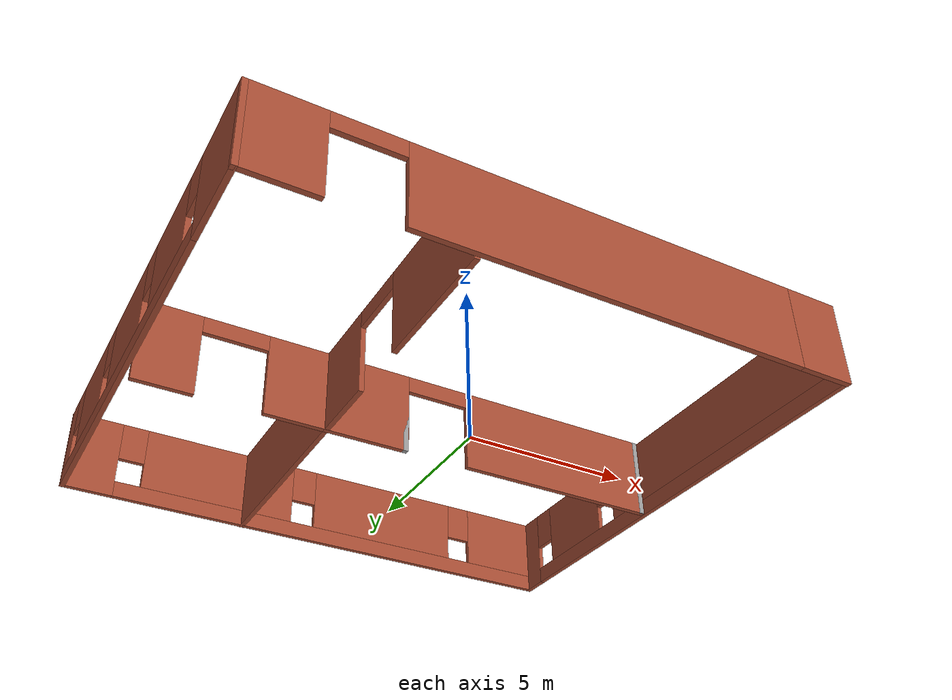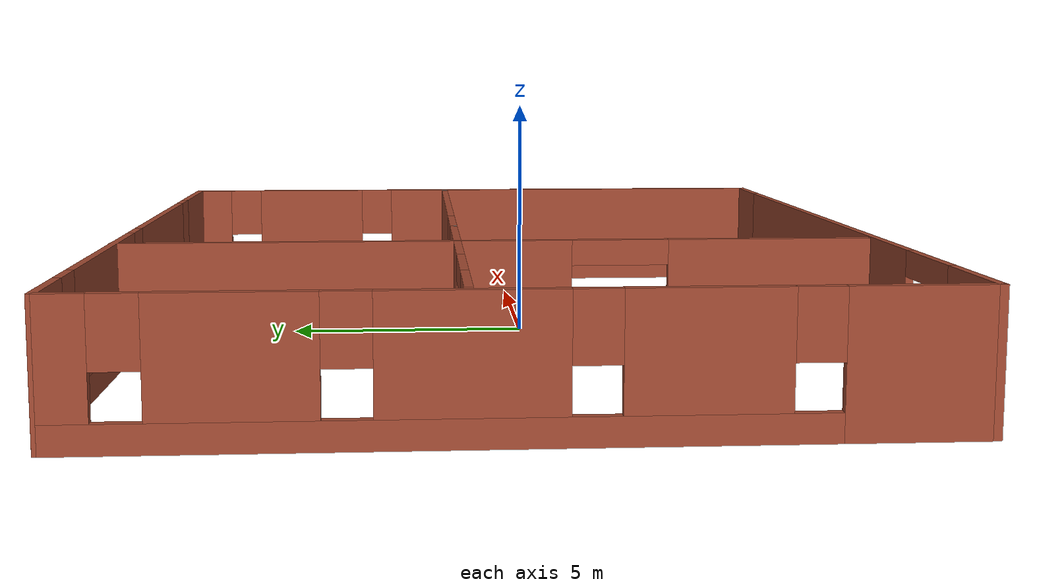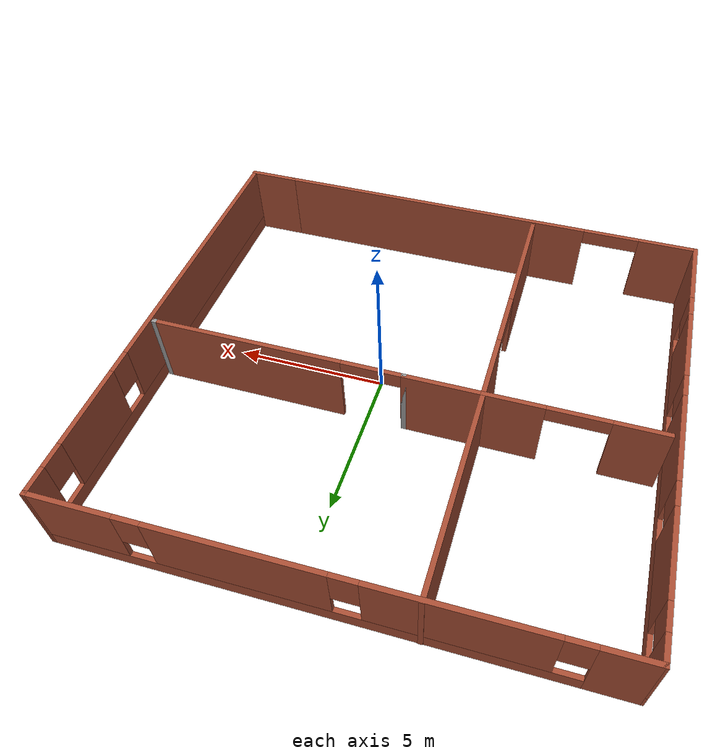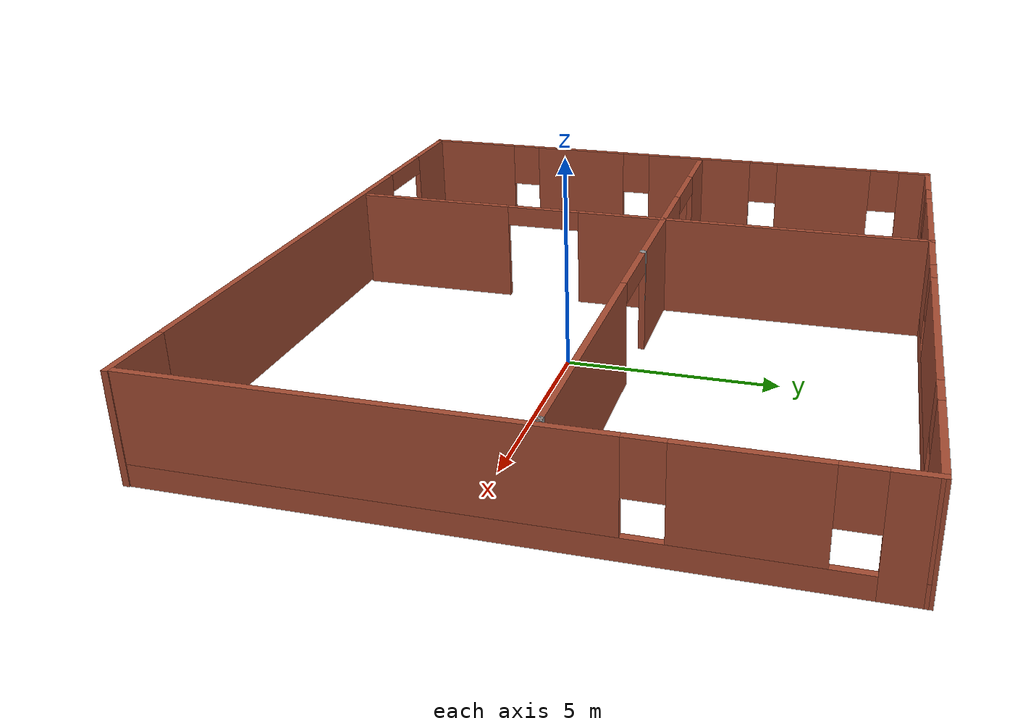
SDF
<?xml version='1.0'?>
<sdf version='1.7'>
  <model name='niranjanaudacity'>
    <pose>-1.04923 0.696284 0 0 -0 0</pose>
    <link name='Wall_30'>
      <pose>8.20398 0.067768 0 0 -0 -1.5708</pose>
      <visual name='Wall_30_Visual_0'>
        <pose>-7.03907 0 1.25 0 -0 0</pose>
        <geometry>
          <box>
            <size>0.921862 0.15 2.5</size>
          </box>
        </geometry>
        <material>
          <script>
            <uri>file://media/materials/scripts/gazebo.material</uri>
            <name>Gazebo/Bricks</name>
          </script>
          <ambient>0.996078 0.47451 0.0196078 1</ambient>
        </material>
        <meta>
          <layer>0</layer>
        </meta>
      </visual>
      <collision name='Wall_30_Collision_0'>
        <geometry>
          <box>
            <size>0.921862 0.15 2.5</size>
          </box>
        </geometry>
        <pose>-7.03907 0 1.25 0 -0 0</pose>
      </collision>
      <visual name='Wall_30_Visual_1'>
        <pose>0.460931 0 0.25 0 -0 0</pose>
        <geometry>
          <box>
            <size>14.0781 0.15 0.5</size>
          </box>
        </geometry>
        <material>
          <script>
            <uri>file://media/materials/scripts/gazebo.material</uri>
            <name>Gazebo/Bricks</name>
          </script>
          <ambient>0.996078 0.47451 0.0196078 1</ambient>
        </material>
        <meta>
          <layer>0</layer>
        </meta>
      </visual>
      <collision name='Wall_30_Collision_1'>
        <geometry>
          <box>
            <size>14.0781 0.15 0.5</size>
          </box>
        </geometry>
        <pose>0.460931 0 0.25 0 -0 0</pose>
      </collision>
      <visual name='Wall_30_Visual_2'>
        <pose>-4.39809 0 1.5 0 -0 0</pose>
        <geometry>
          <box>
            <size>2.76009 0.15 2</size>
          </box>
        </geometry>
        <material>
          <script>
            <uri>file://media/materials/scripts/gazebo.material</uri>
            <name>Gazebo/Bricks</name>
          </script>
          <ambient>0.996078 0.47451 0.0196078 1</ambient>
        </material>
        <meta>
          <layer>0</layer>
        </meta>
      </visual>
      <collision name='Wall_30_Collision_2'>
        <geometry>
          <box>
            <size>2.76009 0.15 2</size>
          </box>
        </geometry>
        <pose>-4.39809 0 1.5 0 -0 0</pose>
      </collision>
      <visual name='Wall_30_Visual_3'>
        <pose>2.64098 0 1.5 0 -0 0</pose>
        <geometry>
          <box>
            <size>9.71805 0.15 2</size>
          </box>
        </geometry>
        <material>
          <script>
            <uri>file://media/materials/scripts/gazebo.material</uri>
            <name>Gazebo/Bricks</name>
          </script>
          <ambient>0.996078 0.47451 0.0196078 1</ambient>
        </material>
        <meta>
          <layer>0</layer>
        </meta>
      </visual>
      <collision name='Wall_30_Collision_3'>
        <geometry>
          <box>
            <size>9.71805 0.15 2</size>
          </box>
        </geometry>
        <pose>2.64098 0 1.5 0 -0 0</pose>
      </collision>
      <visual name='Wall_30_Visual_4'>
        <pose>-6.17814 0 1.9 0 -0 0</pose>
        <geometry>
          <box>
            <size>0.8 0.15 1.2</size>
          </box>
        </geometry>
        <material>
          <script>
            <uri>file://media/materials/scripts/gazebo.material</uri>
            <name>Gazebo/Bricks</name>
          </script>
          <ambient>0.996078 0.47451 0.0196078 1</ambient>
        </material>
        <meta>
          <layer>0</layer>
        </meta>
      </visual>
      <collision name='Wall_30_Collision_4'>
        <geometry>
          <box>
            <size>0.8 0.15 1.2</size>
          </box>
        </geometry>
        <pose>-6.17814 0 1.9 0 -0 0</pose>
      </collision>
      <visual name='Wall_30_Visual_5'>
        <pose>-2.61805 0 1.9 0 -0 0</pose>
        <geometry>
          <box>
            <size>0.8 0.15 1.2</size>
          </box>
        </geometry>
        <material>
          <script>
            <uri>file://media/materials/scripts/gazebo.material</uri>
            <name>Gazebo/Bricks</name>
          </script>
          <ambient>0.996078 0.47451 0.0196078 1</ambient>
        </material>
        <meta>
          <layer>0</layer>
        </meta>
      </visual>
      <collision name='Wall_30_Collision_5'>
        <geometry>
          <box>
            <size>0.8 0.15 1.2</size>
          </box>
        </geometry>
        <pose>-2.61805 0 1.9 0 -0 0</pose>
      </collision>
    </link>
    <link name='Wall_33'>
      <collision name='Wall_33_Collision'>
        <geometry>
          <box>
            <size>1.75 0.15 2.5</size>
          </box>
        </geometry>
        <pose>0 0 1.25 0 -0 0</pose>
      </collision>
      <visual name='Wall_33_Visual'>
        <pose>0 0 1.25 0 -0 0</pose>
        <geometry>
          <box>
            <size>1.75 0.15 2.5</size>
          </box>
        </geometry>
        <material>
          <script>
            <uri>file://media/materials/scripts/gazebo.material</uri>
            <name>Gazebo/Bricks</name>
          </script>
          <ambient>0.996078 0.47451 0.0196078 1</ambient>
        </material>
        <meta>
          <layer>0</layer>
        </meta>
      </visual>
      <pose>7.42531 -7.49338 0 0 -0 0</pose>
    </link>
    <link name='Wall_36'>
      <pose>-0.79969 -7.49338 0 0 -0 3.14159</pose>
      <visual name='Wall_36_Visual_0'>
        <pose>-1.9532 0 1.25 0 -0 0</pose>
        <geometry>
          <box>
            <size>11.0936 0.15 2.5</size>
          </box>
        </geometry>
        <material>
          <script>
            <uri>file://media/materials/scripts/gazebo.material</uri>
            <name>Gazebo/Bricks</name>
          </script>
          <ambient>0.996078 0.47451 0.0196078 1</ambient>
        </material>
        <meta>
          <layer>0</layer>
        </meta>
      </visual>
      <collision name='Wall_36_Collision_0'>
        <geometry>
          <box>
            <size>11.0936 0.15 2.5</size>
          </box>
        </geometry>
        <pose>-1.9532 0 1.25 0 -0 0</pose>
      </collision>
      <visual name='Wall_36_Visual_1'>
        <pose>6.4968 0 1.25 0 -0 0</pose>
        <geometry>
          <box>
            <size>2.0064 0.15 2.5</size>
          </box>
        </geometry>
        <material>
          <script>
            <uri>file://media/materials/scripts/gazebo.material</uri>
            <name>Gazebo/Bricks</name>
          </script>
          <ambient>0.996078 0.47451 0.0196078 1</ambient>
        </material>
        <meta>
          <layer>0</layer>
        </meta>
      </visual>
      <collision name='Wall_36_Collision_1'>
        <geometry>
          <box>
            <size>2.0064 0.15 2.5</size>
          </box>
        </geometry>
        <pose>6.4968 0 1.25 0 -0 0</pose>
      </collision>
      <visual name='Wall_36_Visual_2'>
        <pose>4.54359 0 2.25 0 -0 0</pose>
        <geometry>
          <box>
            <size>1.9 0.15 0.5</size>
          </box>
        </geometry>
        <material>
          <script>
            <uri>file://media/materials/scripts/gazebo.material</uri>
            <name>Gazebo/Bricks</name>
          </script>
          <ambient>0.996078 0.47451 0.0196078 1</ambient>
        </material>
        <meta>
          <layer>0</layer>
        </meta>
      </visual>
      <collision name='Wall_36_Collision_2'>
        <geometry>
          <box>
            <size>1.9 0.15 0.5</size>
          </box>
        </geometry>
        <pose>4.54359 0 2.25 0 -0 0</pose>
      </collision>
    </link>
    <link name='Wall_37'>
      <pose>-8.22469 -0.068385 0 0 -0 1.5708</pose>
      <visual name='Wall_37_Visual_0'>
        <pose>-6.23413 0 1.25 0 -0 0</pose>
        <geometry>
          <box>
            <size>2.53174 0.15 2.5</size>
          </box>
        </geometry>
        <material>
          <script>
            <uri>file://media/materials/scripts/gazebo.material</uri>
            <name>Gazebo/Bricks</name>
          </script>
          <ambient>0.996078 0.47451 0.0196078 1</ambient>
        </material>
        <meta>
          <layer>0</layer>
        </meta>
      </visual>
      <collision name='Wall_37_Collision_0'>
        <geometry>
          <box>
            <size>2.53174 0.15 2.5</size>
          </box>
        </geometry>
        <pose>-6.23413 0 1.25 0 -0 0</pose>
      </collision>
      <visual name='Wall_37_Visual_1'>
        <pose>1.26587 0 0.25 0 -0 0</pose>
        <geometry>
          <box>
            <size>12.4683 0.15 0.5</size>
          </box>
        </geometry>
        <material>
          <script>
            <uri>file://media/materials/scripts/gazebo.material</uri>
            <name>Gazebo/Bricks</name>
          </script>
          <ambient>0.996078 0.47451 0.0196078 1</ambient>
        </material>
        <meta>
          <layer>0</layer>
        </meta>
      </visual>
      <collision name='Wall_37_Collision_1'>
        <geometry>
          <box>
            <size>12.4683 0.15 0.5</size>
          </box>
        </geometry>
        <pose>1.26587 0 0.25 0 -0 0</pose>
      </collision>
      <visual name='Wall_37_Visual_2'>
        <pose>-2.82867 0 1.5 0 -0 0</pose>
        <geometry>
          <box>
            <size>2.67918 0.15 2</size>
          </box>
        </geometry>
        <material>
          <script>
            <uri>file://media/materials/scripts/gazebo.material</uri>
            <name>Gazebo/Bricks</name>
          </script>
          <ambient>0.996078 0.47451 0.0196078 1</ambient>
        </material>
        <meta>
          <layer>0</layer>
        </meta>
      </visual>
      <collision name='Wall_37_Collision_2'>
        <geometry>
          <box>
            <size>2.67918 0.15 2</size>
          </box>
        </geometry>
        <pose>-2.82867 0 1.5 0 -0 0</pose>
      </collision>
      <visual name='Wall_37_Visual_3'>
        <pose>0.832561 0 1.5 0 -0 0</pose>
        <geometry>
          <box>
            <size>3.04328 0.15 2</size>
          </box>
        </geometry>
        <material>
          <script>
            <uri>file://media/materials/scripts/gazebo.material</uri>
            <name>Gazebo/Bricks</name>
          </script>
          <ambient>0.996078 0.47451 0.0196078 1</ambient>
        </material>
        <meta>
          <layer>0</layer>
        </meta>
      </visual>
      <collision name='Wall_37_Collision_3'>
        <geometry>
          <box>
            <size>3.04328 0.15 2</size>
          </box>
        </geometry>
        <pose>0.832561 0 1.5 0 -0 0</pose>
      </collision>
      <visual name='Wall_37_Visual_4'>
        <pose>4.49379 0 1.5 0 -0 0</pose>
        <geometry>
          <box>
            <size>2.67918 0.15 2</size>
          </box>
        </geometry>
        <material>
          <script>
            <uri>file://media/materials/scripts/gazebo.material</uri>
            <name>Gazebo/Bricks</name>
          </script>
          <ambient>0.996078 0.47451 0.0196078 1</ambient>
        </material>
        <meta>
          <layer>0</layer>
        </meta>
      </visual>
      <collision name='Wall_37_Collision_4'>
        <geometry>
          <box>
            <size>2.67918 0.15 2</size>
          </box>
        </geometry>
        <pose>4.49379 0 1.5 0 -0 0</pose>
      </collision>
      <visual name='Wall_37_Visual_5'>
        <pose>7.06669 0 1.5 0 -0 0</pose>
        <geometry>
          <box>
            <size>0.86662 0.15 2</size>
          </box>
        </geometry>
        <material>
          <script>
            <uri>file://media/materials/scripts/gazebo.material</uri>
            <name>Gazebo/Bricks</name>
          </script>
          <ambient>0.996078 0.47451 0.0196078 1</ambient>
        </material>
        <meta>
          <layer>0</layer>
        </meta>
      </visual>
      <collision name='Wall_37_Collision_5'>
        <geometry>
          <box>
            <size>0.86662 0.15 2</size>
          </box>
        </geometry>
        <pose>7.06669 0 1.5 0 -0 0</pose>
      </collision>
      <visual name='Wall_37_Visual_6'>
        <pose>-4.56826 0 1.9 0 -0 0</pose>
        <geometry>
          <box>
            <size>0.8 0.15 1.2</size>
          </box>
        </geometry>
        <material>
          <script>
            <uri>file://media/materials/scripts/gazebo.material</uri>
            <name>Gazebo/Bricks</name>
          </script>
          <ambient>0.996078 0.47451 0.0196078 1</ambient>
        </material>
        <meta>
          <layer>0</layer>
        </meta>
      </visual>
      <collision name='Wall_37_Collision_6'>
        <geometry>
          <box>
            <size>0.8 0.15 1.2</size>
          </box>
        </geometry>
        <pose>-4.56826 0 1.9 0 -0 0</pose>
      </collision>
      <visual name='Wall_37_Visual_7'>
        <pose>-1.08908 0 1.9 0 -0 0</pose>
        <geometry>
          <box>
            <size>0.8 0.15 1.2</size>
          </box>
        </geometry>
        <material>
          <script>
            <uri>file://media/materials/scripts/gazebo.material</uri>
            <name>Gazebo/Bricks</name>
          </script>
          <ambient>0.996078 0.47451 0.0196078 1</ambient>
        </material>
        <meta>
          <layer>0</layer>
        </meta>
      </visual>
      <collision name='Wall_37_Collision_7'>
        <geometry>
          <box>
            <size>0.8 0.15 1.2</size>
          </box>
        </geometry>
        <pose>-1.08908 0 1.9 0 -0 0</pose>
      </collision>
      <visual name='Wall_37_Visual_8'>
        <pose>2.7542 0 1.9 0 -0 0</pose>
        <geometry>
          <box>
            <size>0.8 0.15 1.2</size>
          </box>
        </geometry>
        <material>
          <script>
            <uri>file://media/materials/scripts/gazebo.material</uri>
            <name>Gazebo/Bricks</name>
          </script>
          <ambient>0.996078 0.47451 0.0196078 1</ambient>
        </material>
        <meta>
          <layer>0</layer>
        </meta>
      </visual>
      <collision name='Wall_37_Collision_8'>
        <geometry>
          <box>
            <size>0.8 0.15 1.2</size>
          </box>
        </geometry>
        <pose>2.7542 0 1.9 0 -0 0</pose>
      </collision>
      <visual name='Wall_37_Visual_9'>
        <pose>6.23338 0 1.9 0 -0 0</pose>
        <geometry>
          <box>
            <size>0.8 0.15 1.2</size>
          </box>
        </geometry>
        <material>
          <script>
            <uri>file://media/materials/scripts/gazebo.material</uri>
            <name>Gazebo/Bricks</name>
          </script>
          <ambient>0.996078 0.47451 0.0196078 1</ambient>
        </material>
        <meta>
          <layer>0</layer>
        </meta>
      </visual>
      <collision name='Wall_37_Collision_9'>
        <geometry>
          <box>
            <size>0.8 0.15 1.2</size>
          </box>
        </geometry>
        <pose>6.23338 0 1.9 0 -0 0</pose>
      </collision>
    </link>
    <link name='Wall_38'>
      <pose>-0.010356 7.42469 0 0 -0 0.008287</pose>
      <visual name='Wall_38_Visual_0'>
        <pose>-7.51688 0 1.25 0 -0 0</pose>
        <geometry>
          <box>
            <size>1.54547 0.15 2.5</size>
          </box>
        </geometry>
        <material>
          <script>
            <uri>file://media/materials/scripts/gazebo.material</uri>
            <name>Gazebo/Bricks</name>
          </script>
          <ambient>0.996078 0.47451 0.0196078 1</ambient>
        </material>
        <meta>
          <layer>0</layer>
        </meta>
      </visual>
      <collision name='Wall_38_Collision_0'>
        <geometry>
          <box>
            <size>1.54547 0.15 2.5</size>
          </box>
        </geometry>
        <pose>-7.51688 0 1.25 0 -0 0</pose>
      </collision>
      <visual name='Wall_38_Visual_1'>
        <pose>0.772735 0 0.25 0 -0 0</pose>
        <geometry>
          <box>
            <size>15.0338 0.15 0.5</size>
          </box>
        </geometry>
        <material>
          <script>
            <uri>file://media/materials/scripts/gazebo.material</uri>
            <name>Gazebo/Bricks</name>
          </script>
          <ambient>0.996078 0.47451 0.0196078 1</ambient>
        </material>
        <meta>
          <layer>0</layer>
        </meta>
      </visual>
      <collision name='Wall_38_Collision_1'>
        <geometry>
          <box>
            <size>15.0338 0.15 0.5</size>
          </box>
        </geometry>
        <pose>0.772735 0 0.25 0 -0 0</pose>
      </collision>
      <visual name='Wall_38_Visual_2'>
        <pose>-3.47106 0 1.5 0 -0 0</pose>
        <geometry>
          <box>
            <size>4.94617 0.15 2</size>
          </box>
        </geometry>
        <material>
          <script>
            <uri>file://media/materials/scripts/gazebo.material</uri>
            <name>Gazebo/Bricks</name>
          </script>
          <ambient>0.996078 0.47451 0.0196078 1</ambient>
        </material>
        <meta>
          <layer>0</layer>
        </meta>
      </visual>
      <collision name='Wall_38_Collision_2'>
        <geometry>
          <box>
            <size>4.94617 0.15 2</size>
          </box>
        </geometry>
        <pose>-3.47106 0 1.5 0 -0 0</pose>
      </collision>
      <visual name='Wall_38_Visual_3'>
        <pose>2.33344 0 1.5 0 -0 0</pose>
        <geometry>
          <box>
            <size>5.06284 0.15 2</size>
          </box>
        </geometry>
        <material>
          <script>
            <uri>file://media/materials/scripts/gazebo.material</uri>
            <name>Gazebo/Bricks</name>
          </script>
          <ambient>0.996078 0.47451 0.0196078 1</ambient>
        </material>
        <meta>
          <layer>0</layer>
        </meta>
      </visual>
      <collision name='Wall_38_Collision_3'>
        <geometry>
          <box>
            <size>5.06284 0.15 2</size>
          </box>
        </geometry>
        <pose>2.33344 0 1.5 0 -0 0</pose>
      </collision>
      <visual name='Wall_38_Visual_4'>
        <pose>6.97724 0 1.5 0 -0 0</pose>
        <geometry>
          <box>
            <size>2.62475 0.15 2</size>
          </box>
        </geometry>
        <material>
          <script>
            <uri>file://media/materials/scripts/gazebo.material</uri>
            <name>Gazebo/Bricks</name>
          </script>
          <ambient>0.996078 0.47451 0.0196078 1</ambient>
        </material>
        <meta>
          <layer>0</layer>
        </meta>
      </visual>
      <collision name='Wall_38_Collision_4'>
        <geometry>
          <box>
            <size>2.62475 0.15 2</size>
          </box>
        </geometry>
        <pose>6.97724 0 1.5 0 -0 0</pose>
      </collision>
      <visual name='Wall_38_Visual_5'>
        <pose>-6.34415 0 1.9 0 -0 0</pose>
        <geometry>
          <box>
            <size>0.8 0.15 1.2</size>
          </box>
        </geometry>
        <material>
          <script>
            <uri>file://media/materials/scripts/gazebo.material</uri>
            <name>Gazebo/Bricks</name>
          </script>
          <ambient>0.996078 0.47451 0.0196078 1</ambient>
        </material>
        <meta>
          <layer>0</layer>
        </meta>
      </visual>
      <collision name='Wall_38_Collision_5'>
        <geometry>
          <box>
            <size>0.8 0.15 1.2</size>
          </box>
        </geometry>
        <pose>-6.34415 0 1.9 0 -0 0</pose>
      </collision>
      <visual name='Wall_38_Visual_6'>
        <pose>-0.597976 0 1.9 0 -0 0</pose>
        <geometry>
          <box>
            <size>0.8 0.15 1.2</size>
          </box>
        </geometry>
        <material>
          <script>
            <uri>file://media/materials/scripts/gazebo.material</uri>
            <name>Gazebo/Bricks</name>
          </script>
          <ambient>0.996078 0.47451 0.0196078 1</ambient>
        </material>
        <meta>
          <layer>0</layer>
        </meta>
      </visual>
      <collision name='Wall_38_Collision_6'>
        <geometry>
          <box>
            <size>0.8 0.15 1.2</size>
          </box>
        </geometry>
        <pose>-0.597976 0 1.9 0 -0 0</pose>
      </collision>
      <visual name='Wall_38_Visual_7'>
        <pose>5.26486 0 1.9 0 -0 0</pose>
        <geometry>
          <box>
            <size>0.8 0.15 1.2</size>
          </box>
        </geometry>
        <material>
          <script>
            <uri>file://media/materials/scripts/gazebo.material</uri>
            <name>Gazebo/Bricks</name>
          </script>
          <ambient>0.996078 0.47451 0.0196078 1</ambient>
        </material>
        <meta>
          <layer>0</layer>
        </meta>
      </visual>
      <collision name='Wall_38_Collision_7'>
        <geometry>
          <box>
            <size>0.8 0.15 1.2</size>
          </box>
        </geometry>
        <pose>5.26486 0 1.9 0 -0 0</pose>
      </collision>
    </link>
    <link name='Wall_41'>
      <collision name='Wall_41_Collision'>
        <geometry>
          <box>
            <size>6.75 0.15 2.5</size>
          </box>
        </geometry>
        <pose>0 0 1.25 0 -0 0</pose>
      </collision>
      <visual name='Wall_41_Visual'>
        <pose>0 0 1.25 0 -0 0</pose>
        <geometry>
          <box>
            <size>6.75 0.15 2.5</size>
          </box>
        </geometry>
        <material>
          <script>
            <uri>file://media/materials/scripts/gazebo.material</uri>
            <name>Gazebo/Bricks</name>
          </script>
          <ambient>0.996078 0.47451 0.0196078 1</ambient>
        </material>
        <meta>
          <layer>0</layer>
        </meta>
      </visual>
      <pose>-2.59231 4.11912 0 0 -0 -1.5708</pose>
    </link>
    <link name='Wall_42'>
      <pose>-5.26731 0.819118 0 0 -0 3.14159</pose>
      <visual name='Wall_42_Visual_0'>
        <pose>-1.79178 0 1.25 0 -0 0</pose>
        <geometry>
          <box>
            <size>1.91644 0.15 2.5</size>
          </box>
        </geometry>
        <material>
          <script>
            <uri>file://media/materials/scripts/gazebo.material</uri>
            <name>Gazebo/Bricks</name>
          </script>
          <ambient>0.996078 0.47451 0.0196078 1</ambient>
        </material>
        <meta>
          <layer>0</layer>
        </meta>
      </visual>
      <collision name='Wall_42_Collision_0'>
        <geometry>
          <box>
            <size>1.91644 0.15 2.5</size>
          </box>
        </geometry>
        <pose>-1.79178 0 1.25 0 -0 0</pose>
      </collision>
      <visual name='Wall_42_Visual_1'>
        <pose>1.90822 0 1.25 0 -0 0</pose>
        <geometry>
          <box>
            <size>1.68356 0.15 2.5</size>
          </box>
        </geometry>
        <material>
          <script>
            <uri>file://media/materials/scripts/gazebo.material</uri>
            <name>Gazebo/Bricks</name>
          </script>
          <ambient>0.996078 0.47451 0.0196078 1</ambient>
        </material>
        <meta>
          <layer>0</layer>
        </meta>
      </visual>
      <collision name='Wall_42_Collision_1'>
        <geometry>
          <box>
            <size>1.68356 0.15 2.5</size>
          </box>
        </geometry>
        <pose>1.90822 0 1.25 0 -0 0</pose>
      </collision>
      <visual name='Wall_42_Visual_2'>
        <pose>0.116435 0 2.25 0 -0 0</pose>
        <geometry>
          <box>
            <size>1.9 0.15 0.5</size>
          </box>
        </geometry>
        <material>
          <script>
            <uri>file://media/materials/scripts/gazebo.material</uri>
            <name>Gazebo/Bricks</name>
          </script>
          <ambient>0.996078 0.47451 0.0196078 1</ambient>
        </material>
        <meta>
          <layer>0</layer>
        </meta>
      </visual>
      <collision name='Wall_42_Collision_2'>
        <geometry>
          <box>
            <size>1.9 0.15 0.5</size>
          </box>
        </geometry>
        <pose>0.116435 0 2.25 0 -0 0</pose>
      </collision>
    </link>
    <link name='Wall_45'>
      <collision name='Wall_45_Collision'>
        <geometry>
          <box>
            <size>0.16 0.15 2.5</size>
          </box>
        </geometry>
        <pose>0 0 1.25 0 -0 0</pose>
      </collision>
      <visual name='Wall_45_Visual'>
        <pose>0 0 1.25 0 -0 0</pose>
        <geometry>
          <box>
            <size>0.16 0.15 2.5</size>
          </box>
        </geometry>
        <material>
          <script>
            <uri>file://media/materials/scripts/gazebo.material</uri>
            <name>Gazebo/Grey</name>
          </script>
          <ambient>1 1 1 1</ambient>
        </material>
        <meta>
          <layer>0</layer>
        </meta>
      </visual>
      <pose>-0.187306 0.819118 0 0 -0 0</pose>
    </link>
    <link name='Wall_47'>
      <pose>2.70769 0.819118 0 0 -0 0</pose>
      <visual name='Wall_47_Visual_0'>
        <pose>-4.09314 0 1.25 0 -0 0</pose>
        <geometry>
          <box>
            <size>2.56372 0.15 2.5</size>
          </box>
        </geometry>
        <material>
          <script>
            <uri>file://media/materials/scripts/gazebo.material</uri>
            <name>Gazebo/Bricks</name>
          </script>
          <ambient>0.996078 0.47451 0.0196078 1</ambient>
        </material>
        <meta>
          <layer>0</layer>
        </meta>
      </visual>
      <collision name='Wall_47_Collision_0'>
        <geometry>
          <box>
            <size>2.56372 0.15 2.5</size>
          </box>
        </geometry>
        <pose>-4.09314 0 1.25 0 -0 0</pose>
      </collision>
      <visual name='Wall_47_Visual_1'>
        <pose>2.23186 0 1.25 0 -0 0</pose>
        <geometry>
          <box>
            <size>6.28628 0.15 2.5</size>
          </box>
        </geometry>
        <material>
          <script>
            <uri>file://media/materials/scripts/gazebo.material</uri>
            <name>Gazebo/Bricks</name>
          </script>
          <ambient>0.996078 0.47451 0.0196078 1</ambient>
        </material>
        <meta>
          <layer>0</layer>
        </meta>
      </visual>
      <collision name='Wall_47_Collision_1'>
        <geometry>
          <box>
            <size>6.28628 0.15 2.5</size>
          </box>
        </geometry>
        <pose>2.23186 0 1.25 0 -0 0</pose>
      </collision>
      <visual name='Wall_47_Visual_2'>
        <pose>-1.86128 0 2.25 0 -0 0</pose>
        <geometry>
          <box>
            <size>1.9 0.15 0.5</size>
          </box>
        </geometry>
        <material>
          <script>
            <uri>file://media/materials/scripts/gazebo.material</uri>
            <name>Gazebo/Bricks</name>
          </script>
          <ambient>0.996078 0.47451 0.0196078 1</ambient>
        </material>
        <meta>
          <layer>0</layer>
        </meta>
      </visual>
      <collision name='Wall_47_Collision_2'>
        <geometry>
          <box>
            <size>1.9 0.15 0.5</size>
          </box>
        </geometry>
        <pose>-1.86128 0 2.25 0 -0 0</pose>
      </collision>
    </link>
    <link name='Wall_48'>
      <collision name='Wall_48_Collision'>
        <geometry>
          <box>
            <size>0.16 0.15 2.5</size>
          </box>
        </geometry>
        <pose>0 0 1.25 0 -0 0</pose>
      </collision>
      <visual name='Wall_48_Visual'>
        <pose>0 0 1.25 0 -0 0</pose>
        <geometry>
          <box>
            <size>0.16 0.15 2.5</size>
          </box>
        </geometry>
        <material>
          <script>
            <uri>file://media/materials/scripts/gazebo.material</uri>
            <name>Gazebo/Grey</name>
          </script>
          <ambient>1 1 1 1</ambient>
        </material>
        <meta>
          <layer>0</layer>
        </meta>
      </visual>
      <pose>8.01269 0.819118 0 0 -0 0</pose>
    </link>
    <link name='Wall_50'>
      <pose>-2.59231 -3.23088 0 0 -0 -1.5708</pose>
      <visual name='Wall_50_Visual_0'>
        <pose>-2.96738 0 1.25 0 -0 0</pose>
        <geometry>
          <box>
            <size>2.31525 0.15 2.5</size>
          </box>
        </geometry>
        <material>
          <script>
            <uri>file://media/materials/scripts/gazebo.material</uri>
            <name>Gazebo/Bricks</name>
          </script>
          <ambient>0.996078 0.47451 0.0196078 1</ambient>
        </material>
        <meta>
          <layer>0</layer>
        </meta>
      </visual>
      <collision name='Wall_50_Collision_0'>
        <geometry>
          <box>
            <size>2.31525 0.15 2.5</size>
          </box>
        </geometry>
        <pose>-2.96738 0 1.25 0 -0 0</pose>
      </collision>
      <visual name='Wall_50_Visual_1'>
        <pose>2.10763 0 1.25 0 -0 0</pose>
        <geometry>
          <box>
            <size>4.03475 0.15 2.5</size>
          </box>
        </geometry>
        <material>
          <script>
            <uri>file://media/materials/scripts/gazebo.material</uri>
            <name>Gazebo/Bricks</name>
          </script>
          <ambient>0.996078 0.47451 0.0196078 1</ambient>
        </material>
        <meta>
          <layer>0</layer>
        </meta>
      </visual>
      <collision name='Wall_50_Collision_1'>
        <geometry>
          <box>
            <size>4.03475 0.15 2.5</size>
          </box>
        </geometry>
        <pose>2.10763 0 1.25 0 -0 0</pose>
      </collision>
      <visual name='Wall_50_Visual_2'>
        <pose>-0.85975 0 2.25 0 -0 0</pose>
        <geometry>
          <box>
            <size>1.9 0.15 0.5</size>
          </box>
        </geometry>
        <material>
          <script>
            <uri>file://media/materials/scripts/gazebo.material</uri>
            <name>Gazebo/Bricks</name>
          </script>
          <ambient>0.996078 0.47451 0.0196078 1</ambient>
        </material>
        <meta>
          <layer>0</layer>
        </meta>
      </visual>
      <collision name='Wall_50_Collision_2'>
        <geometry>
          <box>
            <size>1.9 0.15 0.5</size>
          </box>
        </geometry>
        <pose>-0.85975 0 2.25 0 -0 0</pose>
      </collision>
    </link>
    <static>1</static>
  </model>
</sdf>
